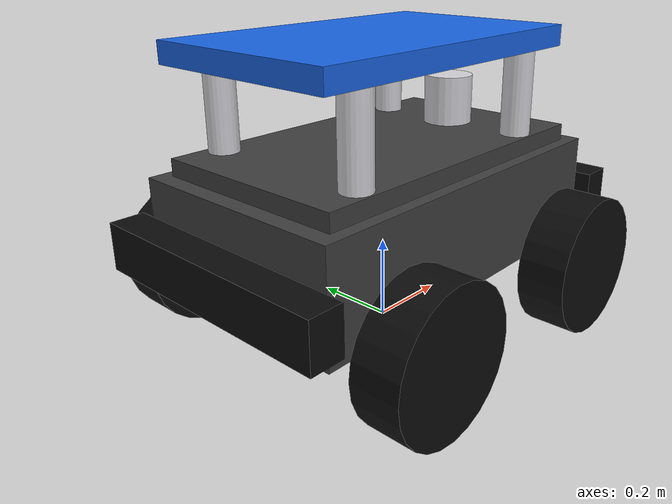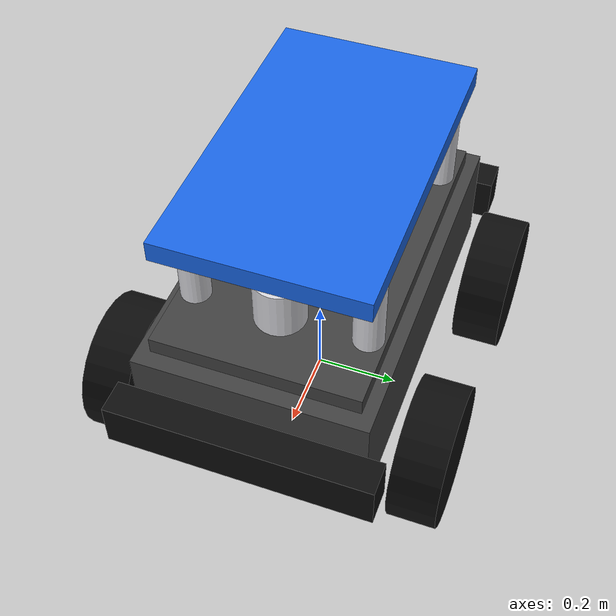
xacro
<?xml version="1.0"?>
<!-- robot_core.xacro - Corps principal du robot AMR style Husky A300 -->
<robot xmlns:xacro="http://www.ros.org/wiki/xacro">

    <!-- Dimensions principales du robot -->
    <xacro:property name="chassis_length" value="0.90"/>
    <xacro:property name="chassis_width"  value="0.54"/>
    <xacro:property name="chassis_height" value="0.25"/>
    <xacro:property name="chassis_mass"   value="45.0"/>

    <xacro:property name="bumper_length" value="0.08"/>
    <xacro:property name="bumper_width"  value="0.62"/>
    <xacro:property name="bumper_height" value="0.11"/>
    <xacro:property name="bumper_mass"   value="2.0"/>

    <xacro:property name="wheel_radius"   value="0.165"/>
    <xacro:property name="wheel_width"    value="0.114"/>
    <xacro:property name="wheel_mass"     value="4.0"/>
    <xacro:property name="wheel_x_offset" value="0.28"/>
    <xacro:property name="wheel_y_offset" value="0.37"/>

    <xacro:property name="cargo_length" value="0.82"/>
    <xacro:property name="cargo_width"  value="0.48"/>
    <xacro:property name="cargo_height" value="0.04"/>
    <xacro:property name="cargo_mass"   value="3.0"/>

    <xacro:property name="mast_width"  value="0.12"/>
    <xacro:property name="mast_height" value="0.12"/>
    <xacro:property name="mast_mass"   value="2.0"/>

    <xacro:property name="rack_height" value="0.22"/>
    <xacro:property name="rack_length" value="0.78"/>
    <xacro:property name="rack_width" value="0.48"/>
    <xacro:property name="rack_thickness" value="0.05"/>
    <xacro:property name="pillar_radius" value="0.035"/>

    <!-- Materials URDF -->
    <material name="light_grey"><color rgba="0.78 0.78 0.78 1.0"/></material>
    <material name="dark_grey"><color rgba="0.25 0.25 0.25 1.0"/></material>
    <material name="silver"><color rgba="0.85 0.85 0.87 1.0"/></material>
    <material name="black"><color rgba="0.05 0.05 0.05 1.0"/></material>
    <material name="blue"><color rgba="0.1 0.4 0.9 1.0"/></material>

    <link name="base_footprint"/>

    <joint name="base_joint" type="fixed">
        <parent link="base_footprint"/>
        <child link="base_link"/>
        <origin xyz="0 0 ${wheel_radius}" rpy="0 0 0"/>
    </joint>

    <link name="base_link"/>

    <joint name="chassis_joint" type="fixed">
        <parent link="base_link"/>
        <child link="chassis_link"/>
        <origin xyz="0 0 ${chassis_height/2}" rpy="0 0 0"/>
    </joint>

    <link name="chassis_link">
        <visual>
            <origin xyz="0 0 0" rpy="0 0 0"/>
            <geometry>
                <box size="${chassis_length} ${chassis_width} ${chassis_height}"/>
            </geometry>
            <material name="dark_grey"/>
        </visual>
        <collision>
            <origin xyz="0 0 0" rpy="0 0 0"/>
            <geometry>
                <box size="${chassis_length} ${chassis_width} ${chassis_height}"/>
            </geometry>
        </collision>
        <xacro:inertial_box mass="${chassis_mass}" x="${chassis_length}" y="${chassis_width}" z="${chassis_height}">
            <origin xyz="0 0 0" rpy="0 0 0"/>
        </xacro:inertial_box>
    </link>

    <gazebo reference="chassis_link">
        <material>Gazebo/DarkGrey</material>
    </gazebo>

    <xacro:macro name="bumper" params="name x_offset">
        <joint name="${name}_bumper_joint" type="fixed">
            <parent link="chassis_link"/>
            <child link="${name}_bumper_link"/>
            <origin xyz="${x_offset} 0 -0.02" rpy="0 0 0"/>
        </joint>
        <link name="${name}_bumper_link">
            <visual>
                <geometry>
                    <box size="${bumper_length} ${bumper_width} ${bumper_height}"/>
                </geometry>
                <material name="black"/>
            </visual>
            <collision>
                <geometry>
                    <box size="${bumper_length} ${bumper_width} ${bumper_height}"/>
                </geometry>
            </collision>
            <xacro:inertial_box mass="${bumper_mass}" x="${bumper_length}" y="${bumper_width}" z="${bumper_height}">
                <origin xyz="0 0 0" rpy="0 0 0"/>
            </xacro:inertial_box>
        </link>
        <gazebo reference="${name}_bumper_link">
            <material>Gazebo/FlatBlack</material>
        </gazebo>
    </xacro:macro>

    <xacro:bumper name="front" x_offset="${chassis_length/2 + bumper_length/2}"/>
    <xacro:bumper name="rear" x_offset="-${chassis_length/2 + bumper_length/2}"/>

    <xacro:macro name="left_wheel" params="prefix x_offset">
        <joint name="${prefix}_left_wheel_joint" type="continuous">
            <parent link="base_link"/>
            <child link="${prefix}_left_wheel_link"/>
            <origin xyz="${x_offset} ${wheel_y_offset} 0" rpy="-1.5708 0 0"/>
            <axis xyz="0 0 1"/>
        </joint>
        <link name="${prefix}_left_wheel_link">
            <visual>
                <geometry>
                    <cylinder radius="${wheel_radius}" length="${wheel_width}"/>
                </geometry>
                <material name="black"/>
            </visual>
            <collision>
                <geometry>
                    <cylinder radius="${wheel_radius}" length="${wheel_width}"/>
                </geometry>
            </collision>
            <xacro:inertial_cylinder mass="${wheel_mass}" length="${wheel_width}" radius="${wheel_radius}">
                <origin xyz="0 0 0" rpy="0 0 0"/>
            </xacro:inertial_cylinder>
        </link>
        <gazebo reference="${prefix}_left_wheel_link">
            <material>Gazebo/FlatBlack</material>
            <mu1>1.0</mu1>
            <mu2>0.2</mu2>
            <fdir1>1 0 0</fdir1>
        </gazebo>
    </xacro:macro>

    <xacro:macro name="right_wheel" params="prefix x_offset">
        <joint name="${prefix}_right_wheel_joint" type="continuous">
            <parent link="base_link"/>
            <child link="${prefix}_right_wheel_link"/>
            <origin xyz="${x_offset} -${wheel_y_offset} 0" rpy="1.5708 0 0"/>
            <axis xyz="0 0 -1"/>
        </joint>
        <link name="${prefix}_right_wheel_link">
            <visual>
                <geometry>
                    <cylinder radius="${wheel_radius}" length="${wheel_width}"/>
                </geometry>
                <material name="black"/>
            </visual>
            <collision>
                <geometry>
                    <cylinder radius="${wheel_radius}" length="${wheel_width}"/>
                </geometry>
            </collision>
            <xacro:inertial_cylinder mass="${wheel_mass}" length="${wheel_width}" radius="${wheel_radius}">
                <origin xyz="0 0 0" rpy="0 0 0"/>
            </xacro:inertial_cylinder>
        </link>
        <gazebo reference="${prefix}_right_wheel_link">
            <material>Gazebo/FlatBlack</material>
            <mu1>1.0</mu1>
            <mu2>0.2</mu2>
            <fdir1>1 0 0</fdir1>
        </gazebo>
    </xacro:macro>

    <xacro:left_wheel prefix="front" x_offset="${wheel_x_offset}"/>
    <xacro:left_wheel prefix="rear" x_offset="-${wheel_x_offset}"/>
    <xacro:right_wheel prefix="front" x_offset="${wheel_x_offset}"/>
    <xacro:right_wheel prefix="rear" x_offset="-${wheel_x_offset}"/>

    <joint name="cargo_platform_joint" type="fixed">
        <parent link="chassis_link"/>
        <child link="cargo_platform_link"/>
        <origin xyz="0 0 ${chassis_height/2 + cargo_height/2}" rpy="0 0 0"/>
    </joint>

    <link name="cargo_platform_link">
        <visual>
            <origin xyz="0 0 0" rpy="0 0 0"/>
            <geometry>
                <box size="${cargo_length} ${cargo_width} ${cargo_height}"/>
            </geometry>
            <material name="dark_grey"/>
        </visual>
        <xacro:inertial_box mass="${cargo_mass}" x="${cargo_length}" y="${cargo_width}" z="${cargo_height}">
            <origin xyz="0 0 0" rpy="0 0 0"/>
        </xacro:inertial_box>
    </link>

    <gazebo reference="cargo_platform_link">
        <material>Gazebo/DarkGrey</material>
    </gazebo>

    <joint name="sensor_mast_joint" type="fixed">
        <parent link="cargo_platform_link"/>
        <child link="sensor_mast_link"/>
        <origin xyz="0.25 0 ${cargo_height/2 + mast_height/2}" rpy="0 0 0"/>
    </joint>

    <link name="sensor_mast_link">
        <visual>
            <geometry>
                <cylinder radius="${mast_width/2}" length="${mast_height}"/>
            </geometry>
            <material name="silver"/>
        </visual>
        <collision>
            <geometry>
                <cylinder radius="${mast_width/2}" length="${mast_height}"/>
            </geometry>
        </collision>
        <xacro:inertial_cylinder mass="${mast_mass}" radius="${mast_width/2}" length="${mast_height}">
            <origin xyz="0 0 0" rpy="0 0 0"/>
        </xacro:inertial_cylinder>
    </link>

    <gazebo reference="sensor_mast_link">
        <material>Gazebo/Grey</material>
    </gazebo>

    <xacro:macro name="rack_pillar" params="prefix x_pos y_pos">
        <joint name="${prefix}_pillar_joint" type="fixed">
            <parent link="cargo_platform_link"/>
            <child link="${prefix}_pillar_link"/>
            <origin xyz="${x_pos} ${y_pos} ${rack_height/2}" rpy="0 0 0"/>
        </joint>
        <link name="${prefix}_pillar_link">
            <visual>
                <geometry>
                    <cylinder radius="${pillar_radius}" length="${rack_height}"/>
                </geometry>
                <material name="silver"/>
            </visual>
            <collision>
                <geometry>
                    <cylinder radius="${pillar_radius}" length="${rack_height}"/>
                </geometry>
            </collision>
            <xacro:inertial_cylinder mass="1.5" radius="${pillar_radius}" length="${rack_height}">
                <origin xyz="0 0 0" rpy="0 0 0"/>
            </xacro:inertial_cylinder>
        </link>
        <gazebo reference="${prefix}_pillar_link">
            <material>Gazebo/Grey</material>
        </gazebo>
    </xacro:macro>

    <xacro:rack_pillar prefix="front_left" x_pos="0.25" y_pos="0.20"/>
    <xacro:rack_pillar prefix="front_right" x_pos="0.25" y_pos="-0.20"/>
    <xacro:rack_pillar prefix="rear_left" x_pos="-0.30" y_pos="0.20"/>
    <xacro:rack_pillar prefix="rear_right" x_pos="-0.30" y_pos="-0.20"/>

    <joint name="payload_rack_joint" type="fixed">
        <parent link="cargo_platform_link"/>
        <child link="payload_rack_link"/>
        <origin xyz="-0.025 0 ${rack_height + rack_thickness/2}" rpy="0 0 0"/>
    </joint>

    <link name="payload_rack_link">
        <visual>
            <geometry>
                <box size="${rack_length} ${rack_width} ${rack_thickness}"/>
            </geometry>
            <material name="blue"/>
        </visual>
        <collision>
            <geometry>
                <box size="${rack_length} ${rack_width} ${rack_thickness}"/>
            </geometry>
        </collision>
        <xacro:inertial_box mass="3.0" x="${rack_length}" y="${rack_width}" z="${rack_thickness}">
            <origin xyz="0 0 0" rpy="0 0 0"/>
        </xacro:inertial_box>
    </link>

    <gazebo reference="payload_rack_link">
        <material>Gazebo/Blue</material>
    </gazebo>

</robot>
